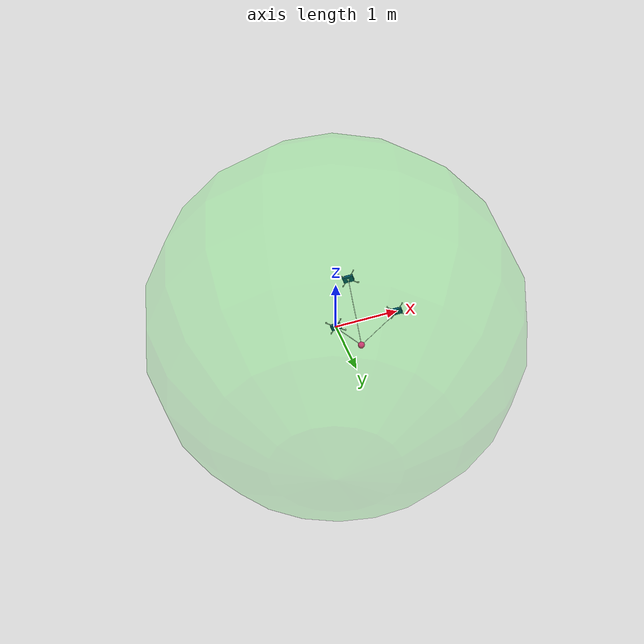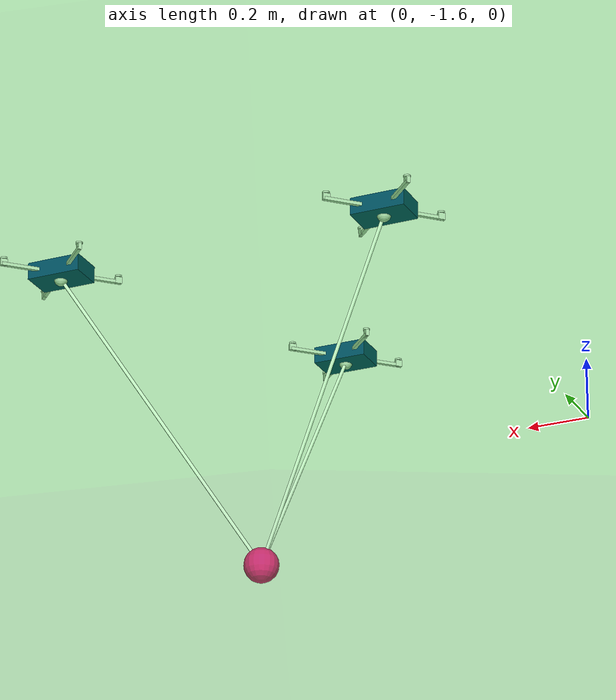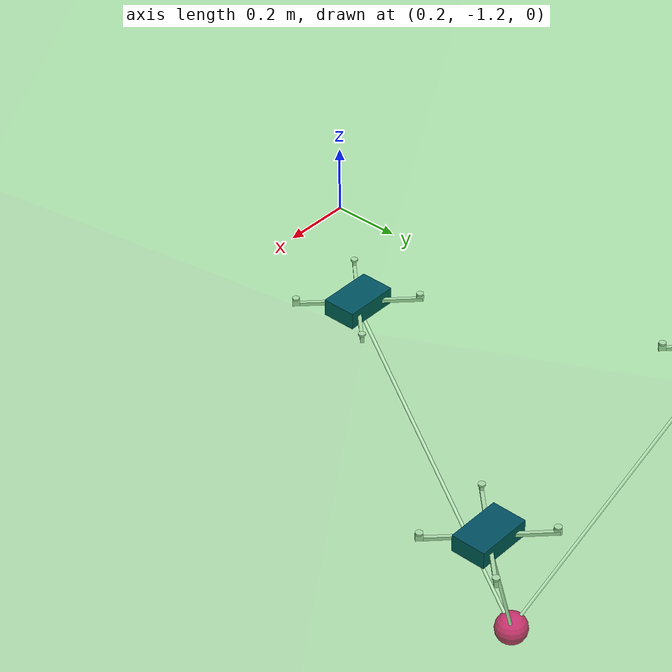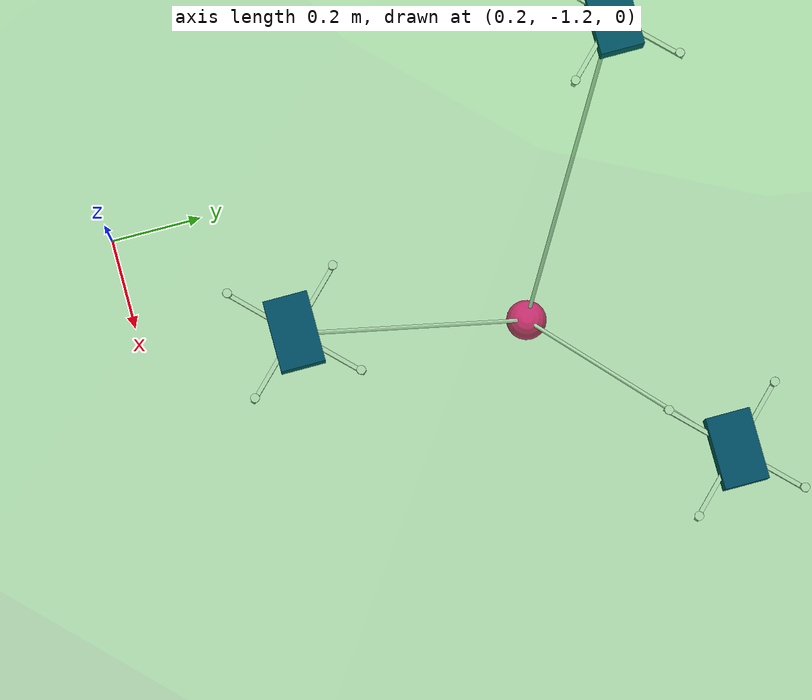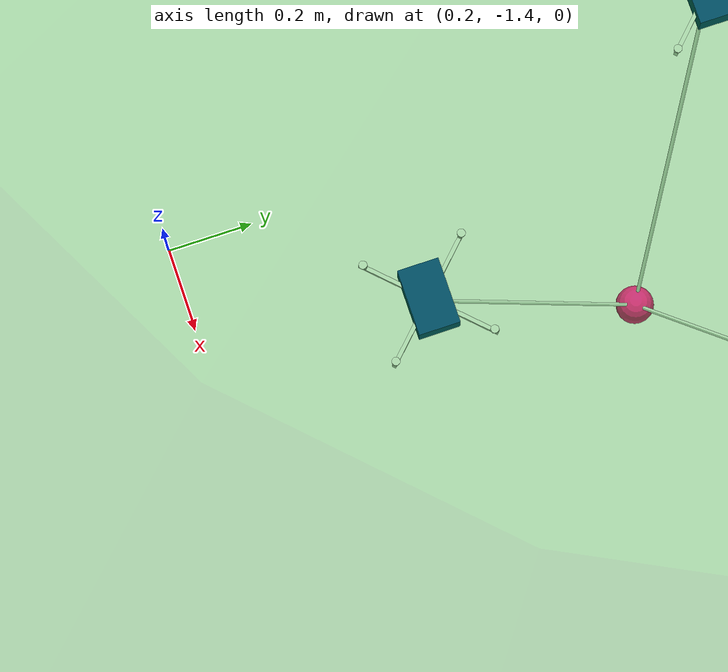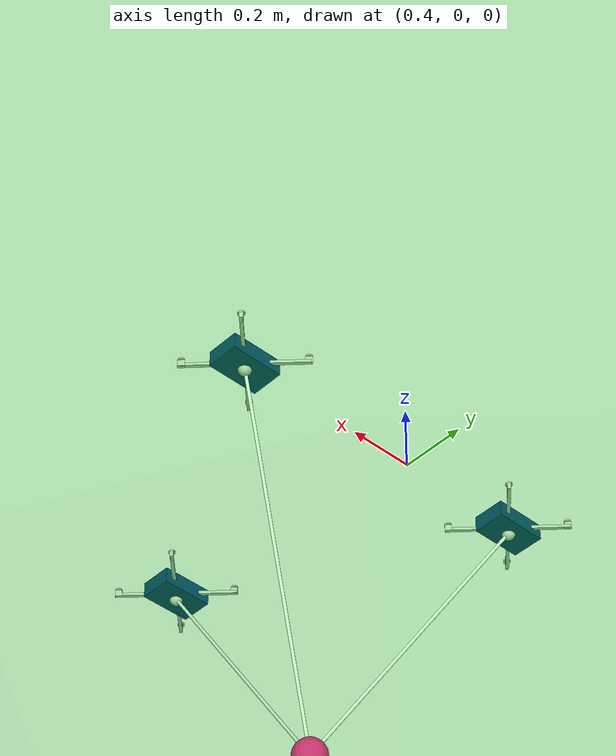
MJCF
<mujoco model="quadrotor_x_payload_multiple">
    <include file="empty_world_center.xml"/>
    <compiler angle="degree" inertiafromgeom="true" coordinate="local"/>
    <option	timestep="0.002" gravity="0 0 -9.81" density="1.225" viscosity="1.789e-5" integrator="RK4"/>
    <default>
        <joint armature="1" damping="1" limited="true"/>
        <geom conaffinity="0" condim="3" density="5.0" friction="1 0.5 0.5" margin="0.01" rgba="0.8 0.6 0.4 1"/>
    </default>

    <worldbody>
        <body name="quadrotor_1" pos="0 0 0">
            <inertial pos="0 0 0" mass="0.8" diaginertia="0.0049 0.0053 0.0098" />
            <joint name="root_1" type="free" damping="0" armature="0" pos="0 0 0" limited="false" />

            <body name="core_1" pos="0 0 0">
                <geom type="box" pos="0 0 0" quat="1 0 0 0" size="0.08 0.05 0.025" rgba="0 0.15 0.47 1" />
            </body>

            <body name="arm00_1" pos="0.071 0.071 0.0">
                <geom type="box" pos="0 0 0" size="0.075 .005 .005" quat="0.924 0.0 0.0 0.383" rgba=".8 .8 .8 1" />
            </body>

            <body name="arm10_1" pos="0.071 -0.071 0.0">
                <geom type="box" pos="0 0 0" size="0.075 .005 .005" quat="0.383 0.0 0.0 0.924" rgba=".8 .8 .8 1" />
            </body>

            <body name="arm20_1" pos="-0.071 -0.071 0.0">
                <geom type="box" pos="0 0 0" size="0.075 .005 .005" quat="-0.383 0.0 0.0 0.924" rgba=".8 .8 .8 1" />
            </body>

            <body name="arm30_1" pos="-0.071 0.071 0.0">
                <geom type="box" pos="0 0 0" size="0.075 .005 .005" quat="0.924 0.0 0.0 -0.383" rgba=".8 .8 .8 1" />
            </body>

            <body name="arm01_1" pos="0.12 0.12 0">
                <geom type="box" pos="0 0 0.005" size="0.01 0.005 0.01" quat="0.924 0.0 0.0 0.383" rgba=".8 .8 .8 1" />
                <body name="thruster0_1" pos="0 0 0.015">
                    <geom type="cylinder" pos="0 0 0.0025" size="0.05 0.0025" quat="0.924 0.0 0.0 0.383" rgba="1 0.67 0 0.5" />
                    <site name="motor0_1" type="cylinder" pos="0 0 0.0025" size=".01 .0025" quat="0.924 0.0 0.0 0.383" rgba=".8 .8 .8 1" />
                </body>
            </body>

            <body name="arm11_1" pos="0.12 -0.12 0">
                <geom type="box" pos="0 0 0.005" size=".01 .005 .01" quat="0.383 0.0 0.0 0.924" rgba=".8 .8 .8 1" />
                <body name="thruster1_1" pos="0 0 0.015">
                    <geom type="cylinder" pos="0 0 0.0025" size="0.05 0.0025" quat="1 0 0 0" rgba="1 0.67 0 0.5" />
                    <site name="motor1_1" type="cylinder" pos="0 0 .0025" size="0.01 0.0025" quat="1 0 0 0" rgba=".8 .8 .8 1" />
                </body>
            </body>

            <body name="arm21_1" pos="-0.12 -0.12 0">
                <geom type="box" pos="0 0 0.005" size=".01 .005 .01" quat="-0.383 0.0 0.0 0.924" rgba=".8 .8 .8 1" />
                <body name="thruster2_1" pos="0 0 0.015">
                    <geom type="cylinder" pos="0 0 0.0025" size=".05 .0025" quat="1 0 0 0" rgba="1 0.67 0 0.5" />
                    <site name="motor2_1" type="cylinder" pos="0 0 .0025" size=".01 .0025" quat="1 0 0 0" rgba=".8 .8 .8 1" />
                </body>
            </body>

            <body name="arm31_1" pos="-0.12 0.12 0">
                <geom type="box" pos="0 0 0.005" size=".01 .005 .01" quat="0.924 0.0 0.0 -0.383" rgba=".8 .8 .8 1" />
                <body name="thruster3_1" pos="0 0 0.015">
                    <geom type="cylinder" pos="0 0 0.0025" size=".05 .0025" quat="1 0 0 0" rgba="1 0.67 0 0.5" />
                    <site name="motor3_1" type="cylinder" pos="0 0 .0025" size=".01 .0025" quat="1 0 0 0" rgba=".8 .8 .8 1" />
                </body>
            </body>

            <body name="hook_core_1" pos="0 0 -0.02">
                <joint name="hook_core_joint_1" type="ball" pos="0 0 0" damping="0.1" armature="0.01"/>
                <geom type="sphere" size="0.02" rgba=".8 .8 .8 1"/>
                <site name="hook_core_site_1" pos="0 0 0" type="sphere" size="0.01" rgba=".8 .8 .8 1"/>
            </body>

            <site name="x_axis_1" type="box" pos=".1 .0 .0" size=".1 .004 .004" quat="1 0 0 0" rgba="1 0 0 0.2" />
            <site name="y_axis_1" type="box" pos=".0 .1 .0" size=".1 .004 .004" quat=".707 0 0 .707" rgba="0 1 0 0.2" />
            <site name="z_axis_1" type="box" pos=".0 .0 .1" size=".1 .004 .004" quat="-.707 0 .707 0" rgba="0 0 1 0.2" />
        </body>

        <body name="quadrotor_2" pos="1 0 0">
            <inertial pos="0 0 0" mass="0.8" diaginertia="0.0049 0.0053 0.0098" />
            <joint name="root_2" type="free" damping="0" armature="0" pos="0 0 0" limited="false" />

            <body name="core_2" pos="0 0 0">
                <geom type="box" pos="0 0 0" quat="1 0 0 0" size="0.08 0.05 0.025" rgba="0 0.15 0.47 1" />
            </body>

            <body name="arm00_2" pos="0.071 0.071 0.0">
                <geom type="box" pos="0 0 0" size="0.075 .005 .005" quat="0.924 0.0 0.0 0.383" rgba=".8 .8 .8 1" />
            </body>

            <body name="arm10_2" pos="0.071 -0.071 0.0">
                <geom type="box" pos="0 0 0" size="0.075 .005 .005" quat="0.383 0.0 0.0 0.924" rgba=".8 .8 .8 1" />
            </body>

            <body name="arm20_2" pos="-0.071 -0.071 0.0">
                <geom type="box" pos="0 0 0" size="0.075 .005 .005" quat="-0.383 0.0 0.0 0.924" rgba=".8 .8 .8 1" />
            </body>

            <body name="arm30_2" pos="-0.071 0.071 0.0">
                <geom type="box" pos="0 0 0" size="0.075 .005 .005" quat="0.924 0.0 0.0 -0.383" rgba=".8 .8 .8 1" />
            </body>

            <body name="arm01_2" pos="0.12 0.12 0">
                <geom type="box" pos="0 0 0.005" size="0.01 0.005 0.01" quat="0.924 0.0 0.0 0.383" rgba=".8 .8 .8 1" />
                <body name="thruster0_2" pos="0 0 0.015">
                    <geom type="cylinder" pos="0 0 0.0025" size="0.05 0.0025" quat="0.924 0.0 0.0 0.383" rgba="1 0.67 0 0.5" />
                    <site name="motor0_2" type="cylinder" pos="0 0 0.0025" size=".01 .0025" quat="0.924 0.0 0.0 0.383" rgba=".8 .8 .8 1" />
                </body>
            </body>

            <body name="arm11_2" pos="0.12 -0.12 0">
                <geom type="box" pos="0 0 0.005" size=".01 .005 .01" quat="0.383 0.0 0.0 0.924" rgba=".8 .8 .8 1" />
                <body name="thruster1_2" pos="0 0 0.015">
                    <geom type="cylinder" pos="0 0 0.0025" size="0.05 0.0025" quat="1 0 0 0" rgba="1 0.67 0 0.5" />
                    <site name="motor1_2" type="cylinder" pos="0 0 .0025" size="0.01 0.0025" quat="1 0 0 0" rgba=".8 .8 .8 1" />
                </body>
            </body>

            <body name="arm21_2" pos="-0.12 -0.12 0">
                <geom type="box" pos="0 0 0.005" size=".01 .005 .01" quat="-0.383 0.0 0.0 0.924" rgba=".8 .8 .8 1" />
                <body name="thruster2_2" pos="0 0 0.015">
                    <geom type="cylinder" pos="0 0 0.0025" size=".05 .0025" quat="1 0 0 0" rgba="1 0.67 0 0.5" />
                    <site name="motor2_2" type="cylinder" pos="0 0 .0025" size=".01 .0025" quat="1 0 0 0" rgba=".8 .8 .8 1" />
                </body>
            </body>

            <body name="arm31_2" pos="-0.12 0.12 0">
                <geom type="box" pos="0 0 0.005" size=".01 .005 .01" quat="0.924 0.0 0.0 -0.383" rgba=".8 .8 .8 1" />
                <body name="thruster3_2" pos="0 0 0.015">
                    <geom type="cylinder" pos="0 0 0.0025" size=".05 .0025" quat="1 0 0 0" rgba="1 0.67 0 0.5" />
                    <site name="motor3_2" type="cylinder" pos="0 0 .0025" size=".01 .0025" quat="1 0 0 0" rgba=".8 .8 .8 1" />
                </body>
            </body>

            <body name="hook_core_2" pos="0 0 -0.02">
                <joint name="hook_core_joint_2" type="ball" pos="0 0 0" damping="0.1" armature="0.01"/>
                <geom type="sphere" size="0.02" rgba=".8 .8 .8 1"/>
                <site name="hook_core_site_2" pos="0 0 0" type="sphere" size="0.01" rgba=".8 .8 .8 1"/>
            </body>

            <site name="x_axis_2" type="box" pos=".1 .0 .0" size=".1 .004 .004" quat="1 0 0 0" rgba="1 0 0 0.2" />
            <site name="y_axis_2" type="box" pos=".0 .1 .0" size=".1 .004 .004" quat=".707 0 0 .707" rgba="0 1 0 0.2" />
            <site name="z_axis_2" type="box" pos=".0 .0 .1" size=".1 .004 .004" quat="-.707 0 .707 0" rgba="0 0 1 0.2" />
        </body>

        <body name="quadrotor_3" pos="0.5 -0.866 0">
            <inertial pos="0 0 0" mass="0.8" diaginertia="0.0049 0.0053 0.0098" />
            <joint name="root_3" type="free" damping="0" armature="0" pos="0 0 0" limited="false" />

            <body name="core_3" pos="0 0 0">
                <geom type="box" pos="0 0 0" quat="1 0 0 0" size="0.08 0.05 0.025" rgba="0 0.15 0.47 1" />
            </body>

            <body name="arm00_3" pos="0.071 0.071 0.0">
                <geom type="box" pos="0 0 0" size="0.075 .005 .005" quat="0.924 0.0 0.0 0.383" rgba=".8 .8 .8 1" />
            </body>

            <body name="arm10_3" pos="0.071 -0.071 0.0">
                <geom type="box" pos="0 0 0" size="0.075 .005 .005" quat="0.383 0.0 0.0 0.924" rgba=".8 .8 .8 1" />
            </body>

            <body name="arm20_3" pos="-0.071 -0.071 0.0">
                <geom type="box" pos="0 0 0" size="0.075 .005 .005" quat="-0.383 0.0 0.0 0.924" rgba=".8 .8 .8 1" />
            </body>

            <body name="arm30_3" pos="-0.071 0.071 0.0">
                <geom type="box" pos="0 0 0" size="0.075 .005 .005" quat="0.924 0.0 0.0 -0.383" rgba=".8 .8 .8 1" />
            </body>

            <body name="arm01_3" pos="0.12 0.12 0">
                <geom type="box" pos="0 0 0.005" size="0.01 0.005 0.01" quat="0.924 0.0 0.0 0.383" rgba=".8 .8 .8 1" />
                <body name="thruster0_3" pos="0 0 0.015">
                    <geom type="cylinder" pos="0 0 0.0025" size="0.05 0.0025" quat="0.924 0.0 0.0 0.383" rgba="1 0.67 0 0.5" />
                    <site name="motor0_3" type="cylinder" pos="0 0 0.0025" size=".01 .0025" quat="0.924 0.0 0.0 0.383" rgba=".8 .8 .8 1" />
                </body>
            </body>

            <body name="arm11_3" pos="0.12 -0.12 0">
                <geom type="box" pos="0 0 0.005" size=".01 .005 .01" quat="0.383 0.0 0.0 0.924" rgba=".8 .8 .8 1" />
                <body name="thruster1_3" pos="0 0 0.015">
                    <geom type="cylinder" pos="0 0 0.0025" size="0.05 0.0025" quat="1 0 0 0" rgba="1 0.67 0 0.5" />
                    <site name="motor1_3" type="cylinder" pos="0 0 .0025" size="0.01 0.0025" quat="1 0 0 0" rgba=".8 .8 .8 1" />
                </body>
            </body>

            <body name="arm21_3" pos="-0.12 -0.12 0">
                <geom type="box" pos="0 0 0.005" size=".01 .005 .01" quat="-0.383 0.0 0.0 0.924" rgba=".8 .8 .8 1" />
                <body name="thruster2_3" pos="0 0 0.015">
                    <geom type="cylinder" pos="0 0 0.0025" size=".05 .0025" quat="1 0 0 0" rgba="1 0.67 0 0.5" />
                    <site name="motor2_3" type="cylinder" pos="0 0 .0025" size=".01 .0025" quat="1 0 0 0" rgba=".8 .8 .8 1" />
                </body>
            </body>

            <body name="arm31_3" pos="-0.12 0.12 0">
                <geom type="box" pos="0 0 0.005" size=".01 .005 .01" quat="0.924 0.0 0.0 -0.383" rgba=".8 .8 .8 1" />
                <body name="thruster3_3" pos="0 0 0.015">
                    <geom type="cylinder" pos="0 0 0.0025" size=".05 .0025" quat="1 0 0 0" rgba="1 0.67 0 0.5" />
                    <site name="motor3_3" type="cylinder" pos="0 0 .0025" size=".01 .0025" quat="1 0 0 0" rgba=".8 .8 .8 1" />
                </body>
            </body>

            <body name="hook_core_3" pos="0 0 -0.02">
                <joint name="hook_core_joint_3" type="ball" pos="0 0 0" damping="0.1" armature="0.01"/>
                <geom type="sphere" size="0.02" rgba=".8 .8 .8 1"/>
                <site name="hook_core_site_3" pos="0 0 0" type="sphere" size="0.01" rgba=".8 .8 .8 1"/>
            </body>

            <site name="x_axis_3" type="box" pos=".1 .0 .0" size=".1 .004 .004" quat="1 0 0 0" rgba="1 0 0 0.2" />
            <site name="y_axis_3" type="box" pos=".0 .1 .0" size=".1 .004 .004" quat=".707 0 0 .707" rgba="0 1 0 0.2" />
            <site name="z_axis_3" type="box" pos=".0 .0 .1" size=".1 .004 .004" quat="-.707 0 .707 0" rgba="0 0 1 0.2" />
        </body>

        <body name="payload" pos="0.5 -0.289 -0.866">
            <joint name="payload" type="free" damping="0" armature="0" pos="0 0 0" limited="false"/>
            <geom type="sphere" size="0.05" rgba="1 0.02 0.54 1" mass="0.1"/>
            <body name="hook_payload" pos="0 0 0">
                <joint name="hook_payload_joint" type="ball" pos="0 0 0" range="0 0" damping="0.1" armature="0.01" limited="true"/>
                <geom type="sphere" size="0.02" rgba=".8 .8 .8 1"/>
                <site name="hook_payload_site" pos="0 0 0" type="sphere" size="0.01" rgba=".8 .8 .8 1"/>
            </body>
        </body>
    </worldbody>

    <tendon>
        <spatial range="0 1.0" limited="true" rgba="1 1 1 1" width=".005" stiffness="0">
            <site site="hook_core_site_1"/>
            <site site="hook_payload_site"/>
        </spatial>
    </tendon>

    <tendon>
        <spatial range="0 1.0" limited="true" rgba="1 1 1 1" width=".005" stiffness="0">
            <site site="hook_core_site_2"/>
            <site site="hook_payload_site"/>
        </spatial>
    </tendon>

    <tendon>
        <spatial range="0 1.0" limited="true" rgba="1 1 1 1" width=".005" stiffness="0">
            <site site="hook_core_site_3"/>
            <site site="hook_payload_site"/>
        </spatial>
    </tendon>

    <actuator>
        <motor name="Motor0_1" ctrllimited="true" ctrlrange="0 5" gear="0  0. 1. 0. 0. -0.025" site="motor0_1"/>
        <motor name="Motor1_1" ctrllimited="true" ctrlrange="0 5" gear="0  0. 1. 0. 0. -0.025" site="motor1_1"/>
        <motor name="Motor2_1" ctrllimited="true" ctrlrange="0 5" gear="0  0. 1. 0. 0.  0.025" site="motor2_1"/>
        <motor name="Motor3_1" ctrllimited="true" ctrlrange="0 5" gear="0  0. 1. 0. 0.  0.025" site="motor3_1"/>

        <motor name="Motor0_2" ctrllimited="true" ctrlrange="0 5" gear="0  0. 1. 0. 0. -0.025" site="motor0_2"/>
        <motor name="Motor1_2" ctrllimited="true" ctrlrange="0 5" gear="0  0. 1. 0. 0. -0.025" site="motor1_2"/>
        <motor name="Motor2_2" ctrllimited="true" ctrlrange="0 5" gear="0  0. 1. 0. 0.  0.025" site="motor2_2"/>
        <motor name="Motor3_2" ctrllimited="true" ctrlrange="0 5" gear="0  0. 1. 0. 0.  0.025" site="motor3_2"/>

        <motor name="Motor0_3" ctrllimited="true" ctrlrange="0 5" gear="0  0. 1. 0. 0. -0.025" site="motor0_3"/>
        <motor name="Motor1_3" ctrllimited="true" ctrlrange="0 5" gear="0  0. 1. 0. 0. -0.025" site="motor1_3"/>
        <motor name="Motor2_3" ctrllimited="true" ctrlrange="0 5" gear="0  0. 1. 0. 0.  0.025" site="motor2_3"/>
        <motor name="Motor3_3" ctrllimited="true" ctrlrange="0 5" gear="0  0. 1. 0. 0.  0.025" site="motor3_3"/>
    </actuator>
</mujoco>

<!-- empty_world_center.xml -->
<mujoco model="empty-world">
	<compiler angle="degree" coordinate="local" inertiafromgeom="true"/>
	<option integrator="RK4" timestep="0.01"/>
	<size nconmax="500" njmax="1000"/>
	<default>
		<joint armature="1" damping="1" limited="true"/>
		<geom conaffinity="0" condim="3" density="5.0" friction="1 0.5 0.5" margin="0.01" rgba="0.8 0.6 0.4 1"/>
	</default>
	<asset>
		<texture fileback="images/sunny-back.png" filedown="images/sunny-down.png" filefront="images/sunny-front.png" fileleft="images/sunny-left.png" fileright="images/sunny-right.png" fileup="images/sunny-up.png" type="skybox"/>
		<texture builtin="flat" height="1278" mark="cross" markrgb="1 1 1" name="texgeom" random="0.01" rgb1="0.8627450980392157 0.8901960784313725 0.9137254901960784" rgb2="0.9058823529411765 0.9215686274509803 0.9647058823529412" type="cube" width="127"/>
		<texture builtin="checker" height="100" name="texplane" rgb1="0.8235294117647058 0.8117647058823529 0.9450980392156862" rgb2="0.43137254901960786 0.6392156862745098 0.9019607843137255" type="2d" width="100"/>
		<material name="MatPlane" reflectance="0.5" shininess="1" specular="1" texrepeat="60 60" texture="texplane"/>
		<material name="geom" texture="texgeom" texuniform="true"/>
	</asset>
	<worldbody>
		<light cutoff="100" diffuse="1 1 1" dir="0 0 -1.3" directional="true" exponent="1" pos="0 0 1.3" specular="0.1 0.1 0.1"/>
		<geom type="sphere" size="3.0" pos="0 0 0" rgba="0 1 0 0.1" conaffinity="0"/> Transparent green ball
	</worldbody>
</mujoco>
